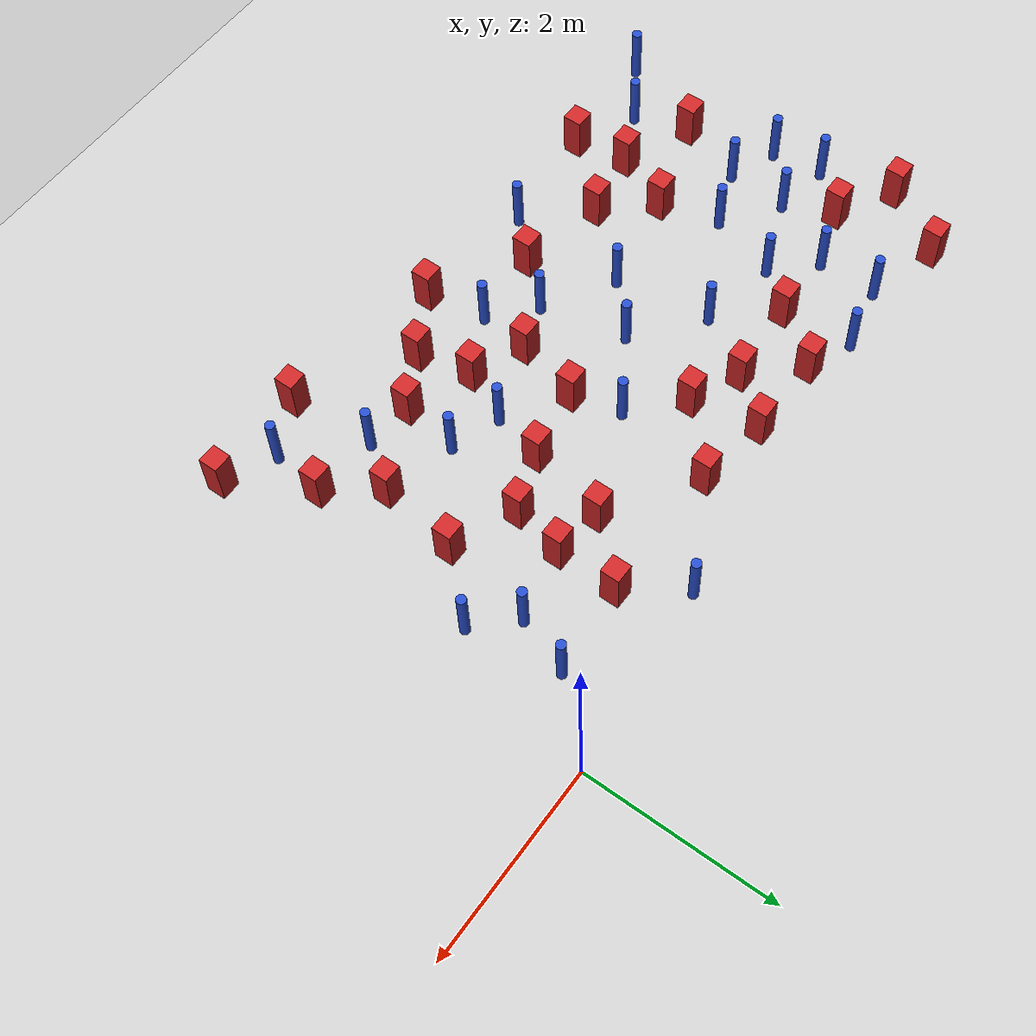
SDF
<sdf version="1.6">
 <world name="default">
  <model name="ground_plane">
   <static>1</static>
   <link name="link">
    <collision name="collision">
     <geometry><plane><normal>0 0 1</normal><size>100 100</size></plane></geometry>
     <surface><friction><ode><mu>100</mu><mu2>50</mu2></ode></friction></surface>
    </collision>
    <visual name="visual">
     <cast_shadows>0</cast_shadows>
     <geometry><plane><normal>0 0 1</normal><size>100 100</size></plane></geometry>
     <material>
      <ambient>1.0 1.0 1.0 1.0</ambient>
      <diffuse>0.8 0.8 0.8 1.0</diffuse>
      <specular>0.01 0.01 0.01 1.000000</specular>
     </material>
    </visual>
   </link>
  </model>
  <model name="square_post_obstacle6">
   <static>true</static>
   <pose>-1.98005522862 -3.44571432488 8.22691968438e-08 7.2212513382e-06 -7.54495500217e-07 2.29674213826e-05</pose>
   <link name="link">
    <pose>0 0 0.25 0 -0 0</pose>
    <inertial>
     <mass>100</mass>
     <inertia>
      <ixx>0.166667</ixx>
      <ixy>0</ixy>
      <ixz>0</ixz>
      <iyy>0.166667</iyy>
      <iyz>0</iyz>
      <izz>0.166667</izz>
     </inertia>
    </inertial>
    <collision name="collision"><geometry><box><size>.2 .2 .5</size></box></geometry></collision>
    <visual name="visual">
     <geometry><box><size>.2 .2 .5</size></box></geometry>
     <material>
      <script><name>Gazebo/Red</name><uri>file://media/materials/scripts/gazebo.material</uri></script>
     </material>
    </visual>
   </link>
  </model>
  <model name="pole_obstacle14">
   <static>true</static>
   <pose>-4.4448475508 -3.98693693877 2.88873142074e-08 -9.90536690067e-09 4.60219948984e-07 -1.20965994963e-07</pose>
   <link name="link">
    <pose>0 0 0.3 0 -0 0</pose>
    <inertial>
     <mass>1</mass>
     <inertia><ixx>0.145833</ixx><ixy>0</ixy><ixz>0</ixz><iyy>0.145833</iyy><iyz>0</iyz><izz>0.125</izz></inertia>
    </inertial>
    <collision name="collision">
     <geometry><cylinder><radius>0.05</radius><length>.6</length></cylinder></geometry>
    </collision>
    <visual name="visual">
     <geometry><cylinder><radius>0.05</radius><length>.6</length></cylinder></geometry>
     <material>
      <script><name>Gazebo/Blue</name><uri>file://media/materials/scripts/gazebo.material</uri></script>
     </material>
    </visual>
   </link>
  </model>
  <model name="square_post_obstacle13">
   <static>true</static>
   <pose>-0.348801083154 -4.35457787506 8.22691968438e-08 7.2212513382e-06 -7.54495500217e-07 2.29674213826e-05</pose>
   <link name="link">
    <pose>0 0 0.25 0 -0 0</pose>
    <inertial>
     <mass>100</mass>
     <inertia>
      <ixx>0.166667</ixx>
      <ixy>0</ixy>
      <ixz>0</ixz>
      <iyy>0.166667</iyy>
      <iyz>0</iyz>
      <izz>0.166667</izz>
     </inertia>
    </inertial>
    <collision name="collision"><geometry><box><size>.2 .2 .5</size></box></geometry></collision>
    <visual name="visual">
     <geometry><box><size>.2 .2 .5</size></box></geometry>
     <material>
      <script><name>Gazebo/Red</name><uri>file://media/materials/scripts/gazebo.material</uri></script>
     </material>
    </visual>
   </link>
  </model>
  <model name="square_post_obstacle26">
   <static>true</static>
   <pose>-1.15954725785 -3.03305720448 8.22691968438e-08 7.2212513382e-06 -7.54495500217e-07 2.29674213826e-05</pose>
   <link name="link">
    <pose>0 0 0.25 0 -0 0</pose>
    <inertial>
     <mass>100</mass>
     <inertia>
      <ixx>0.166667</ixx>
      <ixy>0</ixy>
      <ixz>0</ixz>
      <iyy>0.166667</iyy>
      <iyz>0</iyz>
      <izz>0.166667</izz>
     </inertia>
    </inertial>
    <collision name="collision"><geometry><box><size>.2 .2 .5</size></box></geometry></collision>
    <visual name="visual">
     <geometry><box><size>.2 .2 .5</size></box></geometry>
     <material>
      <script><name>Gazebo/Red</name><uri>file://media/materials/scripts/gazebo.material</uri></script>
     </material>
    </visual>
   </link>
  </model>
  <model name="pole_obstacle46">
   <static>true</static>
   <pose>-1.89506586583 -2.86767510947 2.88873142074e-08 -9.90536689791e-09 4.6021994899e-07 -1.20965994959e-07</pose>
   <link name="link">
    <pose>0 0 0.3 0 -0 0</pose>
    <inertial>
     <mass>1</mass>
     <inertia><ixx>0.145833</ixx><ixy>0</ixy><ixz>0</ixz><iyy>0.145833</iyy><iyz>0</iyz><izz>0.125</izz></inertia>
    </inertial>
    <collision name="collision">
     <geometry><cylinder><radius>0.05</radius><length>.6</length></cylinder></geometry>
    </collision>
    <visual name="visual">
     <geometry><cylinder><radius>0.05</radius><length>.6</length></cylinder></geometry>
     <material>
      <script><name>Gazebo/Blue</name><uri>file://media/materials/scripts/gazebo.material</uri></script>
     </material>
    </visual>
   </link>
  </model>
  <model name="pole_obstacle47">
   <static>true</static>
   <pose>-5.73893120837 -0.576416664402 2.88873142074e-08 -9.90536689837e-09 4.60219948989e-07 -1.2096599496e-07</pose>
   <link name="link">
    <pose>0 0 0.3 0 -0 0</pose>
    <inertial>
     <mass>1</mass>
     <inertia><ixx>0.145833</ixx><ixy>0</ixy><ixz>0</ixz><iyy>0.145833</iyy><iyz>0</iyz><izz>0.125</izz></inertia>
    </inertial>
    <collision name="collision">
     <geometry><cylinder><radius>0.05</radius><length>.6</length></cylinder></geometry>
    </collision>
    <visual name="visual">
     <geometry><cylinder><radius>0.05</radius><length>.6</length></cylinder></geometry>
     <material>
      <script><name>Gazebo/Blue</name><uri>file://media/materials/scripts/gazebo.material</uri></script>
     </material>
    </visual>
   </link>
  </model>
  <model name="square_post_obstacle36">
   <static>true</static>
   <pose>-6.3511220476 -1.39198458628 8.22691968438e-08 7.2212513382e-06 -7.54495500217e-07 2.29674213826e-05</pose>
   <link name="link">
    <pose>0 0 0.25 0 -0 0</pose>
    <inertial>
     <mass>100</mass>
     <inertia>
      <ixx>0.166667</ixx>
      <ixy>0</ixy>
      <ixz>0</ixz>
      <iyy>0.166667</iyy>
      <iyz>0</iyz>
      <izz>0.166667</izz>
     </inertia>
    </inertial>
    <collision name="collision"><geometry><box><size>.2 .2 .5</size></box></geometry></collision>
    <visual name="visual">
     <geometry><box><size>.2 .2 .5</size></box></geometry>
     <material>
      <script><name>Gazebo/Red</name><uri>file://media/materials/scripts/gazebo.material</uri></script>
     </material>
    </visual>
   </link>
  </model>
  <model name="square_post_obstacle40">
   <static>true</static>
   <pose>-3.14593004203 -4.12067574648 8.22691968438e-08 7.2212513382e-06 -7.54495500217e-07 2.29674213826e-05</pose>
   <link name="link">
    <pose>0 0 0.25 0 -0 0</pose>
    <inertial>
     <mass>100</mass>
     <inertia>
      <ixx>0.166667</ixx>
      <ixy>0</ixy>
      <ixz>0</ixz>
      <iyy>0.166667</iyy>
      <iyz>0</iyz>
      <izz>0.166667</izz>
     </inertia>
    </inertial>
    <collision name="collision"><geometry><box><size>.2 .2 .5</size></box></geometry></collision>
    <visual name="visual">
     <geometry><box><size>.2 .2 .5</size></box></geometry>
     <material>
      <script><name>Gazebo/Red</name><uri>file://media/materials/scripts/gazebo.material</uri></script>
     </material>
    </visual>
   </link>
  </model>
  <model name="square_post_obstacle41">
   <static>true</static>
   <pose>-1.68557168259 -1.92287466019 8.22691968438e-08 7.2212513382e-06 -7.54495500217e-07 2.29674213826e-05</pose>
   <link name="link">
    <pose>0 0 0.25 0 -0 0</pose>
    <inertial>
     <mass>100</mass>
     <inertia>
      <ixx>0.166667</ixx>
      <ixy>0</ixy>
      <ixz>0</ixz>
      <iyy>0.166667</iyy>
      <iyz>0</iyz>
      <izz>0.166667</izz>
     </inertia>
    </inertial>
    <collision name="collision"><geometry><box><size>.2 .2 .5</size></box></geometry></collision>
    <visual name="visual">
     <geometry><box><size>.2 .2 .5</size></box></geometry>
     <material>
      <script><name>Gazebo/Red</name><uri>file://media/materials/scripts/gazebo.material</uri></script>
     </material>
    </visual>
   </link>
  </model>
  <model name="square_post_obstacle44">
   <static>true</static>
   <pose>-2.97443066913 -0.732602560235 8.22691968438e-08 7.2212513382e-06 -7.54495500217e-07 2.29674213826e-05</pose>
   <link name="link">
    <pose>0 0 0.25 0 -0 0</pose>
    <inertial>
     <mass>100</mass>
     <inertia>
      <ixx>0.166667</ixx>
      <ixy>0</ixy>
      <ixz>0</ixz>
      <iyy>0.166667</iyy>
      <iyz>0</iyz>
      <izz>0.166667</izz>
     </inertia>
    </inertial>
    <collision name="collision"><geometry><box><size>.2 .2 .5</size></box></geometry></collision>
    <visual name="visual">
     <geometry><box><size>.2 .2 .5</size></box></geometry>
     <material>
      <script><name>Gazebo/Red</name><uri>file://media/materials/scripts/gazebo.material</uri></script>
     </material>
    </visual>
   </link>
  </model>
  <model name="pole_obstacle61">
   <static>true</static>
   <pose>-5.59857716989 -2.30964717044 2.88873142074e-08 -9.90536690245e-09 4.6021994898e-07 -1.20965994966e-07</pose>
   <link name="link">
    <pose>0 0 0.3 0 -0 0</pose>
    <inertial>
     <mass>1</mass>
     <inertia><ixx>0.145833</ixx><ixy>0</ixy><ixz>0</ixz><iyy>0.145833</iyy><iyz>0</iyz><izz>0.125</izz></inertia>
    </inertial>
    <collision name="collision">
     <geometry><cylinder><radius>0.05</radius><length>.6</length></cylinder></geometry>
    </collision>
    <visual name="visual">
     <geometry><cylinder><radius>0.05</radius><length>.6</length></cylinder></geometry>
     <material>
      <script><name>Gazebo/Blue</name><uri>file://media/materials/scripts/gazebo.material</uri></script>
     </material>
    </visual>
   </link>
  </model>
  <model name="pole_obstacle66">
   <static>true</static>
   <pose>-1.95175322804 -0.171279541014 2.88873142074e-08 -9.90536689886e-09 4.60219948988e-07 -1.20965994961e-07</pose>
   <link name="link">
    <pose>0 0 0.3 0 -0 0</pose>
    <inertial>
     <mass>1</mass>
     <inertia><ixx>0.145833</ixx><ixy>0</ixy><ixz>0</ixz><iyy>0.145833</iyy><iyz>0</iyz><izz>0.125</izz></inertia>
    </inertial>
    <collision name="collision">
     <geometry><cylinder><radius>0.05</radius><length>.6</length></cylinder></geometry>
    </collision>
    <visual name="visual">
     <geometry><cylinder><radius>0.05</radius><length>.6</length></cylinder></geometry>
     <material>
      <script><name>Gazebo/Blue</name><uri>file://media/materials/scripts/gazebo.material</uri></script>
     </material>
    </visual>
   </link>
  </model>
  <model name="pole_obstacle67">
   <static>true</static>
   <pose>-5.36191729496 -1.58728852013 2.88873142074e-08 -9.90536689445e-09 4.60219948999e-07 -1.20965994956e-07</pose>
   <link name="link">
    <pose>0 0 0.3 0 -0 0</pose>
    <inertial>
     <mass>1</mass>
     <inertia><ixx>0.145833</ixx><ixy>0</ixy><ixz>0</ixz><iyy>0.145833</iyy><iyz>0</iyz><izz>0.125</izz></inertia>
    </inertial>
    <collision name="collision">
     <geometry><cylinder><radius>0.05</radius><length>.6</length></cylinder></geometry>
    </collision>
    <visual name="visual">
     <geometry><cylinder><radius>0.05</radius><length>.6</length></cylinder></geometry>
     <material>
      <script><name>Gazebo/Blue</name><uri>file://media/materials/scripts/gazebo.material</uri></script>
     </material>
    </visual>
   </link>
  </model>
  <model name="square_post_obstacle53">
   <static>true</static>
   <pose>-5.67620406764 -3.5190477656 8.22691968438e-08 7.2212513382e-06 -7.54495500217e-07 2.29674213826e-05</pose>
   <link name="link">
    <pose>0 0 0.25 0 -0 0</pose>
    <inertial>
     <mass>100</mass>
     <inertia>
      <ixx>0.166667</ixx>
      <ixy>0</ixy>
      <ixz>0</ixz>
      <iyy>0.166667</iyy>
      <iyz>0</iyz>
      <izz>0.166667</izz>
     </inertia>
    </inertial>
    <collision name="collision"><geometry><box><size>.2 .2 .5</size></box></geometry></collision>
    <visual name="visual">
     <geometry><box><size>.2 .2 .5</size></box></geometry>
     <material>
      <script><name>Gazebo/Red</name><uri>file://media/materials/scripts/gazebo.material</uri></script>
     </material>
    </visual>
   </link>
  </model>
  <model name="square_post_obstacle54">
   <static>true</static>
   <pose>-2.99628972614 -2.28152391783 8.22691968438e-08 7.2212513382e-06 -7.54495500217e-07 2.29674213826e-05</pose>
   <link name="link">
    <pose>0 0 0.25 0 -0 0</pose>
    <inertial>
     <mass>100</mass>
     <inertia>
      <ixx>0.166667</ixx>
      <ixy>0</ixy>
      <ixz>0</ixz>
      <iyy>0.166667</iyy>
      <iyz>0</iyz>
      <izz>0.166667</izz>
     </inertia>
    </inertial>
    <collision name="collision"><geometry><box><size>.2 .2 .5</size></box></geometry></collision>
    <visual name="visual">
     <geometry><box><size>.2 .2 .5</size></box></geometry>
     <material>
      <script><name>Gazebo/Red</name><uri>file://media/materials/scripts/gazebo.material</uri></script>
     </material>
    </visual>
   </link>
  </model>
  <model name="square_post_obstacle57">
   <static>true</static>
   <pose>-5.00217469725 -1.16910594535 8.22691968438e-08 7.2212513382e-06 -7.54495500217e-07 2.29674213826e-05</pose>
   <link name="link">
    <pose>0 0 0.25 0 -0 0</pose>
    <inertial>
     <mass>100</mass>
     <inertia>
      <ixx>0.166667</ixx>
      <ixy>0</ixy>
      <ixz>0</ixz>
      <iyy>0.166667</iyy>
      <iyz>0</iyz>
      <izz>0.166667</izz>
     </inertia>
    </inertial>
    <collision name="collision"><geometry><box><size>.2 .2 .5</size></box></geometry></collision>
    <visual name="visual">
     <geometry><box><size>.2 .2 .5</size></box></geometry>
     <material>
      <script><name>Gazebo/Red</name><uri>file://media/materials/scripts/gazebo.material</uri></script>
     </material>
    </visual>
   </link>
  </model>
  <model name="square_post_obstacle63">
   <static>true</static>
   <pose>-6.48683885195 -0.360123715587 8.22691968438e-08 7.2212513382e-06 -7.54495500217e-07 2.29674213826e-05</pose>
   <link name="link">
    <pose>0 0 0.25 0 -0 0</pose>
    <inertial>
     <mass>100</mass>
     <inertia>
      <ixx>0.166667</ixx>
      <ixy>0</ixy>
      <ixz>0</ixz>
      <iyy>0.166667</iyy>
      <iyz>0</iyz>
      <izz>0.166667</izz>
     </inertia>
    </inertial>
    <collision name="collision"><geometry><box><size>.2 .2 .5</size></box></geometry></collision>
    <visual name="visual">
     <geometry><box><size>.2 .2 .5</size></box></geometry>
     <material>
      <script><name>Gazebo/Red</name><uri>file://media/materials/scripts/gazebo.material</uri></script>
     </material>
    </visual>
   </link>
  </model>
  <model name="pole_obstacle74">
   <static>true</static>
   <pose>-0.480131920809 -1.62166939091 2.88873142074e-08 -9.90536689939e-09 4.60219948987e-07 -1.20965994963e-07</pose>
   <link name="link">
    <pose>0 0 0.3 0 -0 0</pose>
    <inertial>
     <mass>1</mass>
     <inertia><ixx>0.145833</ixx><ixy>0</ixy><ixz>0</ixz><iyy>0.145833</iyy><iyz>0</iyz><izz>0.125</izz></inertia>
    </inertial>
    <collision name="collision">
     <geometry><cylinder><radius>0.05</radius><length>.6</length></cylinder></geometry>
    </collision>
    <visual name="visual">
     <geometry><cylinder><radius>0.05</radius><length>.6</length></cylinder></geometry>
     <material>
      <script><name>Gazebo/Blue</name><uri>file://media/materials/scripts/gazebo.material</uri></script>
     </material>
    </visual>
   </link>
  </model>
  <model name="square_post_obstacle66">
   <static>true</static>
   <pose>-2.6349883089 -3.18778059441 8.22691968438e-08 7.2212513382e-06 -7.54495500217e-07 2.29674213826e-05</pose>
   <link name="link">
    <pose>0 0 0.25 0 -0 0</pose>
    <inertial>
     <mass>100</mass>
     <inertia>
      <ixx>0.166667</ixx>
      <ixy>0</ixy>
      <ixz>0</ixz>
      <iyy>0.166667</iyy>
      <iyz>0</iyz>
      <izz>0.166667</izz>
     </inertia>
    </inertial>
    <collision name="collision"><geometry><box><size>.2 .2 .5</size></box></geometry></collision>
    <visual name="visual">
     <geometry><box><size>.2 .2 .5</size></box></geometry>
     <material>
      <script><name>Gazebo/Red</name><uri>file://media/materials/scripts/gazebo.material</uri></script>
     </material>
    </visual>
   </link>
  </model>
  <model name="pole_obstacle86">
   <static>true</static>
   <pose>-3.14069144494 -1.78746303223 2.88873142074e-08 -9.90536691123e-09 4.60219948959e-07 -1.20965994982e-07</pose>
   <link name="link">
    <pose>0 0 0.3 0 -0 0</pose>
    <inertial>
     <mass>1</mass>
     <inertia><ixx>0.145833</ixx><ixy>0</ixy><ixz>0</ixz><iyy>0.145833</iyy><iyz>0</iyz><izz>0.125</izz></inertia>
    </inertial>
    <collision name="collision">
     <geometry><cylinder><radius>0.05</radius><length>.6</length></cylinder></geometry>
    </collision>
    <visual name="visual">
     <geometry><cylinder><radius>0.05</radius><length>.6</length></cylinder></geometry>
     <material>
      <script><name>Gazebo/Blue</name><uri>file://media/materials/scripts/gazebo.material</uri></script>
     </material>
    </visual>
   </link>
  </model>
  <model name="pole_obstacle89">
   <static>true</static>
   <pose>-6.14993353974 -1.90498738156 2.88873142074e-08 -9.90536689445e-09 4.60219948999e-07 -1.20965994956e-07</pose>
   <link name="link">
    <pose>0 0 0.3 0 -0 0</pose>
    <inertial>
     <mass>1</mass>
     <inertia><ixx>0.145833</ixx><ixy>0</ixy><ixz>0</ixz><iyy>0.145833</iyy><iyz>0</iyz><izz>0.125</izz></inertia>
    </inertial>
    <collision name="collision">
     <geometry><cylinder><radius>0.05</radius><length>.6</length></cylinder></geometry>
    </collision>
    <visual name="visual">
     <geometry><cylinder><radius>0.05</radius><length>.6</length></cylinder></geometry>
     <material>
      <script><name>Gazebo/Blue</name><uri>file://media/materials/scripts/gazebo.material</uri></script>
     </material>
    </visual>
   </link>
  </model>
  <model name="square_post_obstacle82">
   <static>true</static>
   <pose>-6.40765103732 -3.22711742763 8.22691968438e-08 7.2212513382e-06 -7.54495500217e-07 2.29674213826e-05</pose>
   <link name="link">
    <pose>0 0 0.25 0 -0 0</pose>
    <inertial>
     <mass>100</mass>
     <inertia>
      <ixx>0.166667</ixx>
      <ixy>0</ixy>
      <ixz>0</ixz>
      <iyy>0.166667</iyy>
      <iyz>0</iyz>
      <izz>0.166667</izz>
     </inertia>
    </inertial>
    <collision name="collision"><geometry><box><size>.2 .2 .5</size></box></geometry></collision>
    <visual name="visual">
     <geometry><box><size>.2 .2 .5</size></box></geometry>
     <material>
      <script><name>Gazebo/Red</name><uri>file://media/materials/scripts/gazebo.material</uri></script>
     </material>
    </visual>
   </link>
  </model>
  <model name="square_post_obstacle88">
   <static>true</static>
   <pose>-2.27032743322 -2.14332173881 8.22691968438e-08 7.2212513382e-06 -7.54495500217e-07 2.29674213826e-05</pose>
   <link name="link">
    <pose>0 0 0.25 0 -0 0</pose>
    <inertial>
     <mass>100</mass>
     <inertia>
      <ixx>0.166667</ixx>
      <ixy>0</ixy>
      <ixz>0</ixz>
      <iyy>0.166667</iyy>
      <iyz>0</iyz>
      <izz>0.166667</izz>
     </inertia>
    </inertial>
    <collision name="collision"><geometry><box><size>.2 .2 .5</size></box></geometry></collision>
    <visual name="visual">
     <geometry><box><size>.2 .2 .5</size></box></geometry>
     <material>
      <script><name>Gazebo/Red</name><uri>file://media/materials/scripts/gazebo.material</uri></script>
     </material>
    </visual>
   </link>
  </model>
  <model name="square_post_obstacle102">
   <static>true</static>
   <pose>-4.97035339366 -3.39088842522 8.22691968438e-08 7.2212513382e-06 -7.54495500217e-07 2.29674213826e-05</pose>
   <link name="link">
    <pose>0 0 0.25 0 -0 0</pose>
    <inertial>
     <mass>100</mass>
     <inertia>
      <ixx>0.166667</ixx>
      <ixy>0</ixy>
      <ixz>0</ixz>
      <iyy>0.166667</iyy>
      <iyz>0</iyz>
      <izz>0.166667</izz>
     </inertia>
    </inertial>
    <collision name="collision"><geometry><box><size>.2 .2 .5</size></box></geometry></collision>
    <visual name="visual">
     <geometry><box><size>.2 .2 .5</size></box></geometry>
     <material>
      <script><name>Gazebo/Red</name><uri>file://media/materials/scripts/gazebo.material</uri></script>
     </material>
    </visual>
   </link>
  </model>
  <model name="pole_obstacle108">
   <static>true</static>
   <pose>-6.18416984317 -2.54159938217 2.88873142074e-08 -9.90536690245e-09 4.6021994898e-07 -1.20965994966e-07</pose>
   <link name="link">
    <pose>0 0 0.3 0 -0 0</pose>
    <inertial>
     <mass>1</mass>
     <inertia><ixx>0.145833</ixx><ixy>0</ixy><ixz>0</ixz><iyy>0.145833</iyy><iyz>0</iyz><izz>0.125</izz></inertia>
    </inertial>
    <collision name="collision">
     <geometry><cylinder><radius>0.05</radius><length>.6</length></cylinder></geometry>
    </collision>
    <visual name="visual">
     <geometry><cylinder><radius>0.05</radius><length>.6</length></cylinder></geometry>
     <material>
      <script><name>Gazebo/Blue</name><uri>file://media/materials/scripts/gazebo.material</uri></script>
     </material>
    </visual>
   </link>
  </model>
  <model name="square_post_obstacle104">
   <static>true</static>
   <pose>-0.790682622858 -3.55242572535 8.22691968438e-08 7.2212513382e-06 -7.54495500217e-07 2.29674213826e-05</pose>
   <link name="link">
    <pose>0 0 0.25 0 -0 0</pose>
    <inertial>
     <mass>100</mass>
     <inertia>
      <ixx>0.166667</ixx>
      <ixy>0</ixy>
      <ixz>0</ixz>
      <iyy>0.166667</iyy>
      <iyz>0</iyz>
      <izz>0.166667</izz>
     </inertia>
    </inertial>
    <collision name="collision"><geometry><box><size>.2 .2 .5</size></box></geometry></collision>
    <visual name="visual">
     <geometry><box><size>.2 .2 .5</size></box></geometry>
     <material>
      <script><name>Gazebo/Red</name><uri>file://media/materials/scripts/gazebo.material</uri></script>
     </material>
    </visual>
   </link>
  </model>
  <model name="square_post_obstacle110">
   <static>true</static>
   <pose>-1.42398678665 -4.38272446544 8.22691968438e-08 7.2212513382e-06 -7.54495500217e-07 2.29674213826e-05</pose>
   <link name="link">
    <pose>0 0 0.25 0 -0 0</pose>
    <inertial>
     <mass>100</mass>
     <inertia>
      <ixx>0.166667</ixx>
      <ixy>0</ixy>
      <ixz>0</ixz>
      <iyy>0.166667</iyy>
      <iyz>0</iyz>
      <izz>0.166667</izz>
     </inertia>
    </inertial>
    <collision name="collision"><geometry><box><size>.2 .2 .5</size></box></geometry></collision>
    <visual name="visual">
     <geometry><box><size>.2 .2 .5</size></box></geometry>
     <material>
      <script><name>Gazebo/Red</name><uri>file://media/materials/scripts/gazebo.material</uri></script>
     </material>
    </visual>
   </link>
  </model>
  <model name="square_post_obstacle118">
   <static>true</static>
   <pose>-3.18135193442 -2.96170553627 8.22691968438e-08 7.2212513382e-06 -7.54495500217e-07 2.29674213826e-05</pose>
   <link name="link">
    <pose>0 0 0.25 0 -0 0</pose>
    <inertial>
     <mass>100</mass>
     <inertia>
      <ixx>0.166667</ixx>
      <ixy>0</ixy>
      <ixz>0</ixz>
      <iyy>0.166667</iyy>
      <iyz>0</iyz>
      <izz>0.166667</izz>
     </inertia>
    </inertial>
    <collision name="collision"><geometry><box><size>.2 .2 .5</size></box></geometry></collision>
    <visual name="visual">
     <geometry><box><size>.2 .2 .5</size></box></geometry>
     <material>
      <script><name>Gazebo/Red</name><uri>file://media/materials/scripts/gazebo.material</uri></script>
     </material>
    </visual>
   </link>
  </model>
  <model name="pole_obstacle121">
   <static>true</static>
   <pose>-2.40788756158 -2.69553018691 2.88873142074e-08 -9.90536690232e-09 4.6021994898e-07 -1.20965994968e-07</pose>
   <link name="link">
    <pose>0 0 0.3 0 -0 0</pose>
    <inertial>
     <mass>1</mass>
     <inertia><ixx>0.145833</ixx><ixy>0</ixy><ixz>0</ixz><iyy>0.145833</iyy><iyz>0</iyz><izz>0.125</izz></inertia>
    </inertial>
    <collision name="collision">
     <geometry><cylinder><radius>0.05</radius><length>.6</length></cylinder></geometry>
    </collision>
    <visual name="visual">
     <geometry><cylinder><radius>0.05</radius><length>.6</length></cylinder></geometry>
     <material>
      <script><name>Gazebo/Blue</name><uri>file://media/materials/scripts/gazebo.material</uri></script>
     </material>
    </visual>
   </link>
  </model>
  <model name="pole_obstacle123">
   <static>true</static>
   <pose>-3.88117501699 -2.26515753673 2.88873142074e-08 -9.90536690232e-09 4.6021994898e-07 -1.20965994968e-07</pose>
   <link name="link">
    <pose>0 0 0.3 0 -0 0</pose>
    <inertial>
     <mass>1</mass>
     <inertia><ixx>0.145833</ixx><ixy>0</ixy><ixz>0</ixz><iyy>0.145833</iyy><iyz>0</iyz><izz>0.125</izz></inertia>
    </inertial>
    <collision name="collision">
     <geometry><cylinder><radius>0.05</radius><length>.6</length></cylinder></geometry>
    </collision>
    <visual name="visual">
     <geometry><cylinder><radius>0.05</radius><length>.6</length></cylinder></geometry>
     <material>
      <script><name>Gazebo/Blue</name><uri>file://media/materials/scripts/gazebo.material</uri></script>
     </material>
    </visual>
   </link>
  </model>
  <model name="square_post_obstacle126">
   <static>true</static>
   <pose>-5.60373389804 -4.0842799526 8.22691968438e-08 7.22125133819e-06 -7.54495500217e-07 2.29674213826e-05</pose>
   <link name="link">
    <pose>0 0 0.25 0 -0 0</pose>
    <inertial>
     <mass>100</mass>
     <inertia>
      <ixx>0.166667</ixx>
      <ixy>0</ixy>
      <ixz>0</ixz>
      <iyy>0.166667</iyy>
      <iyz>0</iyz>
      <izz>0.166667</izz>
     </inertia>
    </inertial>
    <collision name="collision"><geometry><box><size>.2 .2 .5</size></box></geometry></collision>
    <visual name="visual">
     <geometry><box><size>.2 .2 .5</size></box></geometry>
     <material>
      <script><name>Gazebo/Red</name><uri>file://media/materials/scripts/gazebo.material</uri></script>
     </material>
    </visual>
   </link>
  </model>
  <model name="square_post_obstacle131">
   <static>true</static>
   <pose>-2.51847566155 -3.75098993133 8.22691968438e-08 7.2212513382e-06 -7.54495500217e-07 2.29674213826e-05</pose>
   <link name="link">
    <pose>0 0 0.25 0 -0 0</pose>
    <inertial>
     <mass>100</mass>
     <inertia>
      <ixx>0.166667</ixx>
      <ixy>0</ixy>
      <ixz>0</ixz>
      <iyy>0.166667</iyy>
      <iyz>0</iyz>
      <izz>0.166667</izz>
     </inertia>
    </inertial>
    <collision name="collision"><geometry><box><size>.2 .2 .5</size></box></geometry></collision>
    <visual name="visual">
     <geometry><box><size>.2 .2 .5</size></box></geometry>
     <material>
      <script><name>Gazebo/Red</name><uri>file://media/materials/scripts/gazebo.material</uri></script>
     </material>
    </visual>
   </link>
  </model>
  <model name="pole_obstacle136">
   <static>true</static>
   <pose>-5.0831233668 -0.436131348103 2.88873142074e-08 -9.90536689981e-09 4.60219948986e-07 -1.20965994962e-07</pose>
   <link name="link">
    <pose>0 0 0.3 0 -0 0</pose>
    <inertial>
     <mass>1</mass>
     <inertia><ixx>0.145833</ixx><ixy>0</ixy><ixz>0</ixz><iyy>0.145833</iyy><iyz>0</iyz><izz>0.125</izz></inertia>
    </inertial>
    <collision name="collision">
     <geometry><cylinder><radius>0.05</radius><length>.6</length></cylinder></geometry>
    </collision>
    <visual name="visual">
     <geometry><cylinder><radius>0.05</radius><length>.6</length></cylinder></geometry>
     <material>
      <script><name>Gazebo/Blue</name><uri>file://media/materials/scripts/gazebo.material</uri></script>
     </material>
    </visual>
   </link>
  </model>
  <model name="pole_obstacle144">
   <static>true</static>
   <pose>-6.24829523736 -3.81129471886 2.88873142074e-08 -9.90536690245e-09 4.6021994898e-07 -1.20965994966e-07</pose>
   <link name="link">
    <pose>0 0 0.3 0 -0 0</pose>
    <inertial>
     <mass>1</mass>
     <inertia><ixx>0.145833</ixx><ixy>0</ixy><ixz>0</ixz><iyy>0.145833</iyy><iyz>0</iyz><izz>0.125</izz></inertia>
    </inertial>
    <collision name="collision">
     <geometry><cylinder><radius>0.05</radius><length>.6</length></cylinder></geometry>
    </collision>
    <visual name="visual">
     <geometry><cylinder><radius>0.05</radius><length>.6</length></cylinder></geometry>
     <material>
      <script><name>Gazebo/Blue</name><uri>file://media/materials/scripts/gazebo.material</uri></script>
     </material>
    </visual>
   </link>
  </model>
  <model name="square_post_obstacle140">
   <static>true</static>
   <pose>-3.73459143322 -0.623287674093 8.22691968438e-08 7.2212513382e-06 -7.54495500217e-07 2.29674213826e-05</pose>
   <link name="link">
    <pose>0 0 0.25 0 -0 0</pose>
    <inertial>
     <mass>100</mass>
     <inertia>
      <ixx>0.166667</ixx>
      <ixy>0</ixy>
      <ixz>0</ixz>
      <iyy>0.166667</iyy>
      <iyz>0</iyz>
      <izz>0.166667</izz>
     </inertia>
    </inertial>
    <collision name="collision"><geometry><box><size>.2 .2 .5</size></box></geometry></collision>
    <visual name="visual">
     <geometry><box><size>.2 .2 .5</size></box></geometry>
     <material>
      <script><name>Gazebo/Red</name><uri>file://media/materials/scripts/gazebo.material</uri></script>
     </material>
    </visual>
   </link>
  </model>
  <model name="pole_obstacle146">
   <static>true</static>
   <pose>-4.53682926898 -1.73037296419 2.88873142074e-08 -9.90536689445e-09 4.60219948999e-07 -1.20965994956e-07</pose>
   <link name="link">
    <pose>0 0 0.3 0 -0 0</pose>
    <inertial>
     <mass>1</mass>
     <inertia><ixx>0.145833</ixx><ixy>0</ixy><ixz>0</ixz><iyy>0.145833</iyy><iyz>0</iyz><izz>0.125</izz></inertia>
    </inertial>
    <collision name="collision">
     <geometry><cylinder><radius>0.05</radius><length>.6</length></cylinder></geometry>
    </collision>
    <visual name="visual">
     <geometry><cylinder><radius>0.05</radius><length>.6</length></cylinder></geometry>
     <material>
      <script><name>Gazebo/Blue</name><uri>file://media/materials/scripts/gazebo.material</uri></script>
     </material>
    </visual>
   </link>
  </model>
  <model name="pole_obstacle148">
   <static>true</static>
   <pose>-4.38469817259 -2.72663245066 2.88873142074e-08 -9.90536690245e-09 4.6021994898e-07 -1.20965994966e-07</pose>
   <link name="link">
    <pose>0 0 0.3 0 -0 0</pose>
    <inertial>
     <mass>1</mass>
     <inertia><ixx>0.145833</ixx><ixy>0</ixy><ixz>0</ixz><iyy>0.145833</iyy><iyz>0</iyz><izz>0.125</izz></inertia>
    </inertial>
    <collision name="collision">
     <geometry><cylinder><radius>0.05</radius><length>.6</length></cylinder></geometry>
    </collision>
    <visual name="visual">
     <geometry><cylinder><radius>0.05</radius><length>.6</length></cylinder></geometry>
     <material>
      <script><name>Gazebo/Blue</name><uri>file://media/materials/scripts/gazebo.material</uri></script>
     </material>
    </visual>
   </link>
  </model>
  <model name="pole_obstacle154">
   <static>true</static>
   <pose>-0.634396349139 -0.671046542258 2.88873142074e-08 -9.90536689967e-09 4.60219948986e-07 -1.20965994963e-07</pose>
   <link name="link">
    <pose>0 0 0.3 0 -0 0</pose>
    <inertial>
     <mass>1</mass>
     <inertia><ixx>0.145833</ixx><ixy>0</ixy><ixz>0</ixz><iyy>0.145833</iyy><iyz>0</iyz><izz>0.125</izz></inertia>
    </inertial>
    <collision name="collision">
     <geometry><cylinder><radius>0.05</radius><length>.6</length></cylinder></geometry>
    </collision>
    <visual name="visual">
     <geometry><cylinder><radius>0.05</radius><length>.6</length></cylinder></geometry>
     <material>
      <script><name>Gazebo/Blue</name><uri>file://media/materials/scripts/gazebo.material</uri></script>
     </material>
    </visual>
   </link>
  </model>
  <model name="pole_obstacle157">
   <static>true</static>
   <pose>-5.74906880963 -1.19043065545 2.88873142074e-08 -9.90536689445e-09 4.60219948999e-07 -1.20965994956e-07</pose>
   <link name="link">
    <pose>0 0 0.3 0 -0 0</pose>
    <inertial>
     <mass>1</mass>
     <inertia><ixx>0.145833</ixx><ixy>0</ixy><ixz>0</ixz><iyy>0.145833</iyy><iyz>0</iyz><izz>0.125</izz></inertia>
    </inertial>
    <collision name="collision">
     <geometry><cylinder><radius>0.05</radius><length>.6</length></cylinder></geometry>
    </collision>
    <visual name="visual">
     <geometry><cylinder><radius>0.05</radius><length>.6</length></cylinder></geometry>
     <material>
      <script><name>Gazebo/Blue</name><uri>file://media/materials/scripts/gazebo.material</uri></script>
     </material>
    </visual>
   </link>
  </model>
  <model name="square_post_obstacle155">
   <static>true</static>
   <pose>-2.07511241717 -1.3132941097 8.22691968438e-08 7.2212513382e-06 -7.54495500217e-07 2.29674213826e-05</pose>
   <link name="link">
    <pose>0 0 0.25 0 -0 0</pose>
    <inertial>
     <mass>100</mass>
     <inertia>
      <ixx>0.166667</ixx>
      <ixy>0</ixy>
      <ixz>0</ixz>
      <iyy>0.166667</iyy>
      <iyz>0</iyz>
      <izz>0.166667</izz>
     </inertia>
    </inertial>
    <collision name="collision"><geometry><box><size>.2 .2 .5</size></box></geometry></collision>
    <visual name="visual">
     <geometry><box><size>.2 .2 .5</size></box></geometry>
     <material>
      <script><name>Gazebo/Red</name><uri>file://media/materials/scripts/gazebo.material</uri></script>
     </material>
    </visual>
   </link>
  </model>
  <model name="square_post_obstacle160">
   <static>true</static>
   <pose>-4.04716392723 -3.57431251438 8.22691968438e-08 7.2212513382e-06 -7.54495500217e-07 2.29674213826e-05</pose>
   <link name="link">
    <pose>0 0 0.25 0 -0 0</pose>
    <inertial>
     <mass>100</mass>
     <inertia>
      <ixx>0.166667</ixx>
      <ixy>0</ixy>
      <ixz>0</ixz>
      <iyy>0.166667</iyy>
      <iyz>0</iyz>
      <izz>0.166667</izz>
     </inertia>
    </inertial>
    <collision name="collision"><geometry><box><size>.2 .2 .5</size></box></geometry></collision>
    <visual name="visual">
     <geometry><box><size>.2 .2 .5</size></box></geometry>
     <material>
      <script><name>Gazebo/Red</name><uri>file://media/materials/scripts/gazebo.material</uri></script>
     </material>
    </visual>
   </link>
  </model>
  <model name="square_post_obstacle173">
   <static>true</static>
   <pose>-1.02355538029 -2.20556771741 8.22691968438e-08 7.22125133819e-06 -7.54495500217e-07 2.29674213826e-05</pose>
   <link name="link">
    <pose>0 0 0.25 0 -0 0</pose>
    <inertial>
     <mass>100</mass>
     <inertia>
      <ixx>0.166667</ixx>
      <ixy>0</ixy>
      <ixz>0</ixz>
      <iyy>0.166667</iyy>
      <iyz>0</iyz>
      <izz>0.166667</izz>
     </inertia>
    </inertial>
    <collision name="collision"><geometry><box><size>.2 .2 .5</size></box></geometry></collision>
    <visual name="visual">
     <geometry><box><size>.2 .2 .5</size></box></geometry>
     <material>
      <script><name>Gazebo/Red</name><uri>file://media/materials/scripts/gazebo.material</uri></script>
     </material>
    </visual>
   </link>
  </model>
  <model name="pole_obstacle176">
   <static>true</static>
   <pose>-1.48335258433 -3.50957568968 2.88873142074e-08 -9.90536689791e-09 4.6021994899e-07 -1.20965994959e-07</pose>
   <link name="link">
    <pose>0 0 0.3 0 -0 0</pose>
    <inertial>
     <mass>1</mass>
     <inertia><ixx>0.145833</ixx><ixy>0</ixy><ixz>0</ixz><iyy>0.145833</iyy><iyz>0</iyz><izz>0.125</izz></inertia>
    </inertial>
    <collision name="collision">
     <geometry><cylinder><radius>0.05</radius><length>.6</length></cylinder></geometry>
    </collision>
    <visual name="visual">
     <geometry><cylinder><radius>0.05</radius><length>.6</length></cylinder></geometry>
     <material>
      <script><name>Gazebo/Blue</name><uri>file://media/materials/scripts/gazebo.material</uri></script>
     </material>
    </visual>
   </link>
  </model>
  <model name="square_post_obstacle175">
   <static>true</static>
   <pose>-3.60903693971 -1.32059344435 8.22691968438e-08 7.2212513382e-06 -7.54495500217e-07 2.29674213826e-05</pose>
   <link name="link">
    <pose>0 0 0.25 0 -0 0</pose>
    <inertial>
     <mass>100</mass>
     <inertia>
      <ixx>0.166667</ixx>
      <ixy>0</ixy>
      <ixz>0</ixz>
      <iyy>0.166667</iyy>
      <iyz>0</iyz>
      <izz>0.166667</izz>
     </inertia>
    </inertial>
    <collision name="collision"><geometry><box><size>.2 .2 .5</size></box></geometry></collision>
    <visual name="visual">
     <geometry><box><size>.2 .2 .5</size></box></geometry>
     <material>
      <script><name>Gazebo/Red</name><uri>file://media/materials/scripts/gazebo.material</uri></script>
     </material>
    </visual>
   </link>
  </model>
  <model name="pole_obstacle182">
   <static>true</static>
   <pose>-6.68061839072 -2.34779405333 2.88873142074e-08 -9.90536690245e-09 4.6021994898e-07 -1.20965994966e-07</pose>
   <link name="link">
    <pose>0 0 0.3 0 -0 0</pose>
    <inertial>
     <mass>1</mass>
     <inertia><ixx>0.145833</ixx><ixy>0</ixy><ixz>0</ixz><iyy>0.145833</iyy><iyz>0</iyz><izz>0.125</izz></inertia>
    </inertial>
    <collision name="collision">
     <geometry><cylinder><radius>0.05</radius><length>.6</length></cylinder></geometry>
    </collision>
    <visual name="visual">
     <geometry><cylinder><radius>0.05</radius><length>.6</length></cylinder></geometry>
     <material>
      <script><name>Gazebo/Blue</name><uri>file://media/materials/scripts/gazebo.material</uri></script>
     </material>
    </visual>
   </link>
  </model>
  <model name="square_post_obstacle182">
   <static>true</static>
   <pose>-6.92887269931 -1.04597125775 8.22691968438e-08 7.22125133819e-06 -7.54495500217e-07 2.29674213826e-05</pose>
   <link name="link">
    <pose>0 0 0.25 0 -0 0</pose>
    <inertial>
     <mass>100</mass>
     <inertia>
      <ixx>0.166667</ixx>
      <ixy>0</ixy>
      <ixz>0</ixz>
      <iyy>0.166667</iyy>
      <iyz>0</iyz>
      <izz>0.166667</izz>
     </inertia>
    </inertial>
    <collision name="collision"><geometry><box><size>.2 .2 .5</size></box></geometry></collision>
    <visual name="visual">
     <geometry><box><size>.2 .2 .5</size></box></geometry>
     <material>
      <script><name>Gazebo/Red</name><uri>file://media/materials/scripts/gazebo.material</uri></script>
     </material>
    </visual>
   </link>
  </model>
  <model name="pole_obstacle187">
   <static>true</static>
   <pose>-3.6843384106 -3.1515614103 2.88873142074e-08 -9.90536690232e-09 4.6021994898e-07 -1.20965994968e-07</pose>
   <link name="link">
    <pose>0 0 0.3 0 -0 0</pose>
    <inertial>
     <mass>1</mass>
     <inertia><ixx>0.145833</ixx><ixy>0</ixy><ixz>0</ixz><iyy>0.145833</iyy><iyz>0</iyz><izz>0.125</izz></inertia>
    </inertial>
    <collision name="collision">
     <geometry><cylinder><radius>0.05</radius><length>.6</length></cylinder></geometry>
    </collision>
    <visual name="visual">
     <geometry><cylinder><radius>0.05</radius><length>.6</length></cylinder></geometry>
     <material>
      <script><name>Gazebo/Blue</name><uri>file://media/materials/scripts/gazebo.material</uri></script>
     </material>
    </visual>
   </link>
  </model>
  <model name="pole_obstacle196">
   <static>true</static>
   <pose>-0.845453445906 -1.24239121943 2.88873142074e-08 -9.90536689855e-09 4.60219948989e-07 -1.20965994962e-07</pose>
   <link name="link">
    <pose>0 0 0.3 0 -0 0</pose>
    <inertial>
     <mass>1</mass>
     <inertia><ixx>0.145833</ixx><ixy>0</ixy><ixz>0</ixz><iyy>0.145833</iyy><iyz>0</iyz><izz>0.125</izz></inertia>
    </inertial>
    <collision name="collision">
     <geometry><cylinder><radius>0.05</radius><length>.6</length></cylinder></geometry>
    </collision>
    <visual name="visual">
     <geometry><cylinder><radius>0.05</radius><length>.6</length></cylinder></geometry>
     <material>
      <script><name>Gazebo/Blue</name><uri>file://media/materials/scripts/gazebo.material</uri></script>
     </material>
    </visual>
   </link>
  </model>
  <model name="pole_obstacle198">
   <static>true</static>
   <pose>-6.80822460062 -4.18126206415 2.88873142074e-08 -9.90536690842e-09 4.60219948965e-07 -1.20965994976e-07</pose>
   <link name="link">
    <pose>0 0 0.3 0 -0 0</pose>
    <inertial>
     <mass>1</mass>
     <inertia><ixx>0.145833</ixx><ixy>0</ixy><ixz>0</ixz><iyy>0.145833</iyy><iyz>0</iyz><izz>0.125</izz></inertia>
    </inertial>
    <collision name="collision">
     <geometry><cylinder><radius>0.05</radius><length>.6</length></cylinder></geometry>
    </collision>
    <visual name="visual">
     <geometry><cylinder><radius>0.05</radius><length>.6</length></cylinder></geometry>
     <material>
      <script><name>Gazebo/Blue</name><uri>file://media/materials/scripts/gazebo.material</uri></script>
     </material>
    </visual>
   </link>
  </model>
  <model name="pole_obstacle200">
   <static>true</static>
   <pose>-0.868935358834 -4.12649810872 2.88873142074e-08 -9.90536689661e-09 4.60219948993e-07 -1.20965994957e-07</pose>
   <link name="link">
    <pose>0 0 0.3 0 -0 0</pose>
    <inertial>
     <mass>1</mass>
     <inertia><ixx>0.145833</ixx><ixy>0</ixy><ixz>0</ixz><iyy>0.145833</iyy><iyz>0</iyz><izz>0.125</izz></inertia>
    </inertial>
    <collision name="collision">
     <geometry><cylinder><radius>0.05</radius><length>.6</length></cylinder></geometry>
    </collision>
    <visual name="visual">
     <geometry><cylinder><radius>0.05</radius><length>.6</length></cylinder></geometry>
     <material>
      <script><name>Gazebo/Blue</name><uri>file://media/materials/scripts/gazebo.material</uri></script>
     </material>
    </visual>
   </link>
  </model>
  <model name="pole_obstacle202">
   <static>true</static>
   <pose>-6.74145719863 -1.81531344939 2.88873142074e-08 -9.90536689445e-09 4.60219948999e-07 -1.20965994956e-07</pose>
   <link name="link">
    <pose>0 0 0.3 0 -0 0</pose>
    <inertial>
     <mass>1</mass>
     <inertia><ixx>0.145833</ixx><ixy>0</ixy><ixz>0</ixz><iyy>0.145833</iyy><iyz>0</iyz><izz>0.125</izz></inertia>
    </inertial>
    <collision name="collision">
     <geometry><cylinder><radius>0.05</radius><length>.6</length></cylinder></geometry>
    </collision>
    <visual name="visual">
     <geometry><cylinder><radius>0.05</radius><length>.6</length></cylinder></geometry>
     <material>
      <script><name>Gazebo/Blue</name><uri>file://media/materials/scripts/gazebo.material</uri></script>
     </material>
    </visual>
   </link>
  </model>
  <model name="pole_obstacle204">
   <static>true</static>
   <pose>-3.2644722229 -3.52433674189 2.88873142074e-08 -9.90536689597e-09 4.60219948995e-07 -1.20965994957e-07</pose>
   <link name="link">
    <pose>0 0 0.3 0 -0 0</pose>
    <inertial>
     <mass>1</mass>
     <inertia><ixx>0.145833</ixx><ixy>0</ixy><ixz>0</ixz><iyy>0.145833</iyy><iyz>0</iyz><izz>0.125</izz></inertia>
    </inertial>
    <collision name="collision">
     <geometry><cylinder><radius>0.05</radius><length>.6</length></cylinder></geometry>
    </collision>
    <visual name="visual">
     <geometry><cylinder><radius>0.05</radius><length>.6</length></cylinder></geometry>
     <material>
      <script><name>Gazebo/Blue</name><uri>file://media/materials/scripts/gazebo.material</uri></script>
     </material>
    </visual>
   </link>
  </model>
  <model name="square_post_obstacle210">
   <static>true</static>
   <pose>-4.58980763996 -0.615670296013 8.22691968438e-08 7.2212513382e-06 -7.54495500217e-07 2.29674213826e-05</pose>
   <link name="link">
    <pose>0 0 0.25 0 -0 0</pose>
    <inertial>
     <mass>100</mass>
     <inertia>
      <ixx>0.166667</ixx>
      <ixy>0</ixy>
      <ixz>0</ixz>
      <iyy>0.166667</iyy>
      <iyz>0</iyz>
      <izz>0.166667</izz>
     </inertia>
    </inertial>
    <collision name="collision"><geometry><box><size>.2 .2 .5</size></box></geometry></collision>
    <visual name="visual">
     <geometry><box><size>.2 .2 .5</size></box></geometry>
     <material>
      <script><name>Gazebo/Red</name><uri>file://media/materials/scripts/gazebo.material</uri></script>
     </material>
    </visual>
   </link>
  </model>
  <model name="square_post_obstacle216">
   <static>true</static>
   <pose>-4.12815996738 -1.09733003534 8.22691968438e-08 7.22125133819e-06 -7.54495500217e-07 2.29674213826e-05</pose>
   <link name="link">
    <pose>0 0 0.25 0 -0 0</pose>
    <inertial>
     <mass>100</mass>
     <inertia>
      <ixx>0.166667</ixx>
      <ixy>0</ixy>
      <ixz>0</ixz>
      <iyy>0.166667</iyy>
      <iyz>0</iyz>
      <izz>0.166667</izz>
     </inertia>
    </inertial>
    <collision name="collision"><geometry><box><size>.2 .2 .5</size></box></geometry></collision>
    <visual name="visual">
     <geometry><box><size>.2 .2 .5</size></box></geometry>
     <material>
      <script><name>Gazebo/Red</name><uri>file://media/materials/scripts/gazebo.material</uri></script>
     </material>
    </visual>
   </link>
  </model>
  <model name="square_post_obstacle219">
   <static>true</static>
   <pose>-1.56021996738 -1.38278003534 8.22691968438e-08 7.2212513382e-06 -7.54495500217e-07 2.29674213826e-05</pose>
   <link name="link">
    <pose>0 0 0.25 0 -0 0</pose>
    <inertial>
     <mass>100</mass>
     <inertia>
      <ixx>0.166667</ixx>
      <ixy>0</ixy>
      <ixz>0</ixz>
      <iyy>0.166667</iyy>
      <iyz>0</iyz>
      <izz>0.166667</izz>
     </inertia>
    </inertial>
    <collision name="collision"><geometry><box><size>.2 .2 .5</size></box></geometry></collision>
    <visual name="visual">
     <geometry><box><size>.2 .2 .5</size></box></geometry>
     <material>
      <script><name>Gazebo/Red</name><uri>file://media/materials/scripts/gazebo.material</uri></script>
     </material>
    </visual>
   </link>
  </model>
  <model name="square_post_obstacle231">
   <static>true</static>
   <pose>-5.40868996738 -2.90979003534 8.22691968438e-08 7.2212513382e-06 -7.54495500217e-07 2.29674213826e-05</pose>
   <link name="link">
    <pose>0 0 0.25 0 -0 0</pose>
    <inertial>
     <mass>100</mass>
     <inertia>
      <ixx>0.166667</ixx>
      <ixy>0</ixy>
      <ixz>0</ixz>
      <iyy>0.166667</iyy>
      <iyz>0</iyz>
      <izz>0.166667</izz>
     </inertia>
    </inertial>
    <collision name="collision"><geometry><box><size>.2 .2 .5</size></box></geometry></collision>
    <visual name="visual">
     <geometry><box><size>.2 .2 .5</size></box></geometry>
     <material>
      <script><name>Gazebo/Red</name><uri>file://media/materials/scripts/gazebo.material</uri></script>
     </material>
    </visual>
   </link>
  </model>
  <model name="square_post_obstacle233">
   <static>true</static>
   <pose>-1.54646996738 -0.742600035341 8.22691968438e-08 7.2212513382e-06 -7.54495500217e-07 2.29674213826e-05</pose>
   <link name="link">
    <pose>0 0 0.25 0 -0 0</pose>
    <inertial>
     <mass>100</mass>
     <inertia>
      <ixx>0.166667</ixx>
      <ixy>0</ixy>
      <ixz>0</ixz>
      <iyy>0.166667</iyy>
      <iyz>0</iyz>
      <izz>0.166667</izz>
     </inertia>
    </inertial>
    <collision name="collision"><geometry><box><size>.2 .2 .5</size></box></geometry></collision>
    <visual name="visual">
     <geometry><box><size>.2 .2 .5</size></box></geometry>
     <material>
      <script><name>Gazebo/Red</name><uri>file://media/materials/scripts/gazebo.material</uri></script>
     </material>
    </visual>
   </link>
  </model>
 </world>
</sdf>
